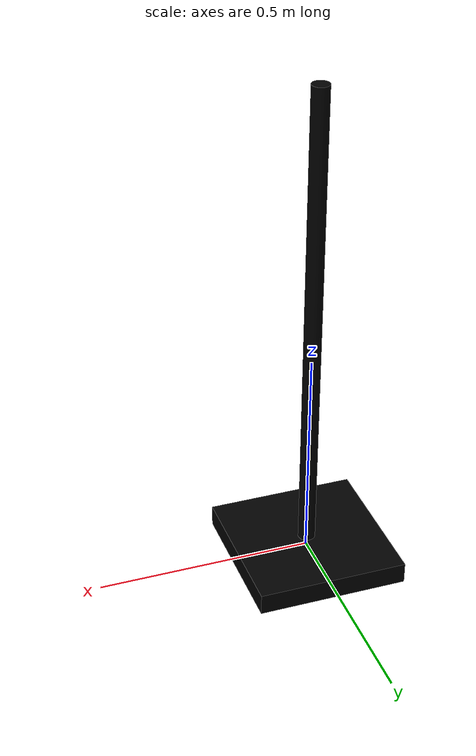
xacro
<?xml version="1.0"?>
<robot name="pole"
       xmlns:xi="http://www.w3.org/2001/XInclude"
       xmlns:gazebo="http://playerstage.sourceforge.net/gazebo/xmlschema/#gz"
       xmlns:model="http://playerstage.sourceforge.net/gazebo/xmlschema/#model"
       xmlns:sensor="http://playerstage.sourceforge.net/gazebo/xmlschema/#sensor"
       xmlns:body="http://playerstage.sourceforge.net/gazebo/xmlschema/#body"
       xmlns:geom="http://playerstage.sourceforge.net/gazebo/xmlschema/#geom"
       xmlns:joint="http://playerstage.sourceforge.net/gazebo/xmlschema/#joint"
       xmlns:interface="http://playerstage.sourceforge.net/gazebo/xmlschema/#interface"
       xmlns:rendering="http://playerstage.sourceforge.net/gazebo/xmlschema/#rendering"
       xmlns:renderable="http://playerstage.sourceforge.net/gazebo/xmlschema/#renderable"
       xmlns:controller="http://playerstage.sourceforge.net/gazebo/xmlschema/#controller"
       xmlns:physics="http://playerstage.sourceforge.net/gazebo/xmlschema/#physics">

  <property name="pole_height" value="1.170" />
  <property name="pole_width"  value="0.35" />
  <property name="pole_depth"  value="0.35" />
  <property name="pole_radius" value="0.02" />
  <property name="pole_x"      value="0.0" />
  <property name="pole_y"      value="0.0" />
  <property name="pole_z"      value="0.0" />

  <property name="pole_base_thickness" value="0.05"/>

  <property name="pole_base_color" value="0 0 0 1" />
  <property name="pole_color" value="0 0 0 1" />

  <property name="M_PI" value="3.1415926535897931" />

  <link name="pole_base_link">
    <inertial>
      <mass value="1.0" />
      <origin xyz="${pole_x} ${pole_y} ${pole_z}" />
      <inertia ixx="1" ixy="0"  ixz="0"
               iyy="1" iyz="0"
               izz="1" />
    </inertial>
    <visual>
      <origin xyz="${pole_x} ${pole_y} ${pole_z}" />
      <geometry>
        <box size="${pole_width} ${pole_depth} ${pole_base_thickness}" />
      </geometry>
      <material name="pole_base_blue">
        <color rgba="${pole_base_color}"/>
      </material>
    </visual>
    <collision>
      <origin xyz="${pole_x} ${pole_y} ${pole_z}" />
      <geometry>
        <box size="${pole_width} ${pole_depth} ${pole_base_thickness}" />
      </geometry>
    </collision>
  </link>
  <gazebo reference="pole_base_link">
    <material>Gazebo/LightWood</material>
    <mu1>50.0</mu1>
    <mu2>50.0</mu2>
    <kp>1000000.0</kp>
    <kd>1.0</kd>
  </gazebo>

  <joint name="pole_joint" type="fixed" >
    <parent link="pole_base_link" />
    <origin xyz="0 0 ${pole_base_thickness}" rpy="0 0 0" />
    <child link="pole_link" />
  </joint>
  <link name="pole_link">
    <inertial>
      <mass value="1.0" />
      <origin xyz="0 0 ${-pole_height/2}" />
      <inertia ixx="0.1" ixy="0"  ixz="0"
               iyy="0.1" iyz="0"
               izz="0.01" />
    </inertial>
    <visual>
      <origin xyz="0.0 0.0 ${+pole_height/2-pole_base_thickness}" rpy="0 0 0" />
      <geometry>
        <cylinder radius="${pole_radius}" length="${pole_height-pole_base_thickness}" />
      </geometry>
      <material name="pole_blue">
        <color rgba="${pole_color}"/>
      </material>
    </visual>
    <collision>
      <origin xyz="0.0 0.0 ${+pole_height/2-pole_base_thickness}" rpy="0.0 0.0 0.0" />
      <geometry>
        <cylinder radius="${pole_radius}" length="${pole_height-pole_base_thickness}" />
      </geometry>
    </collision>
  </link>
  <gazebo reference="pole_link">
    <material>Gazebo/Gray</material>
    <mu1>1000.0</mu1>
    <mu2>1000.0</mu2>
    <kp>10000000.0</kp>
    <kd>1.0</kd>
    <selfCollide>true</selfCollide>
  </gazebo>

</robot>
